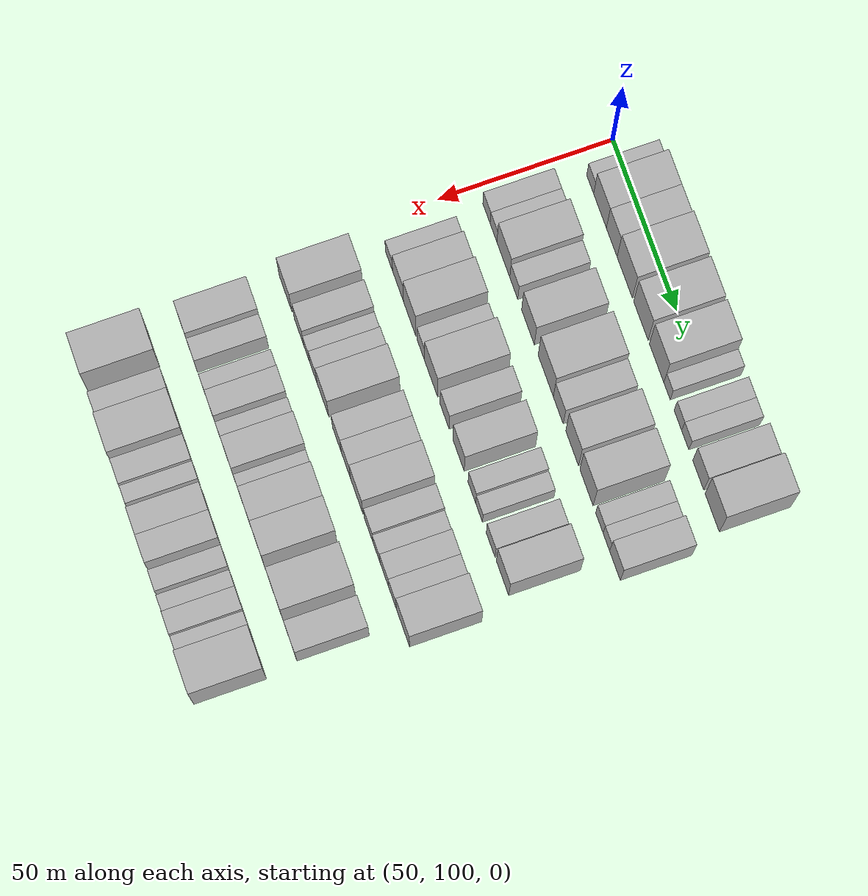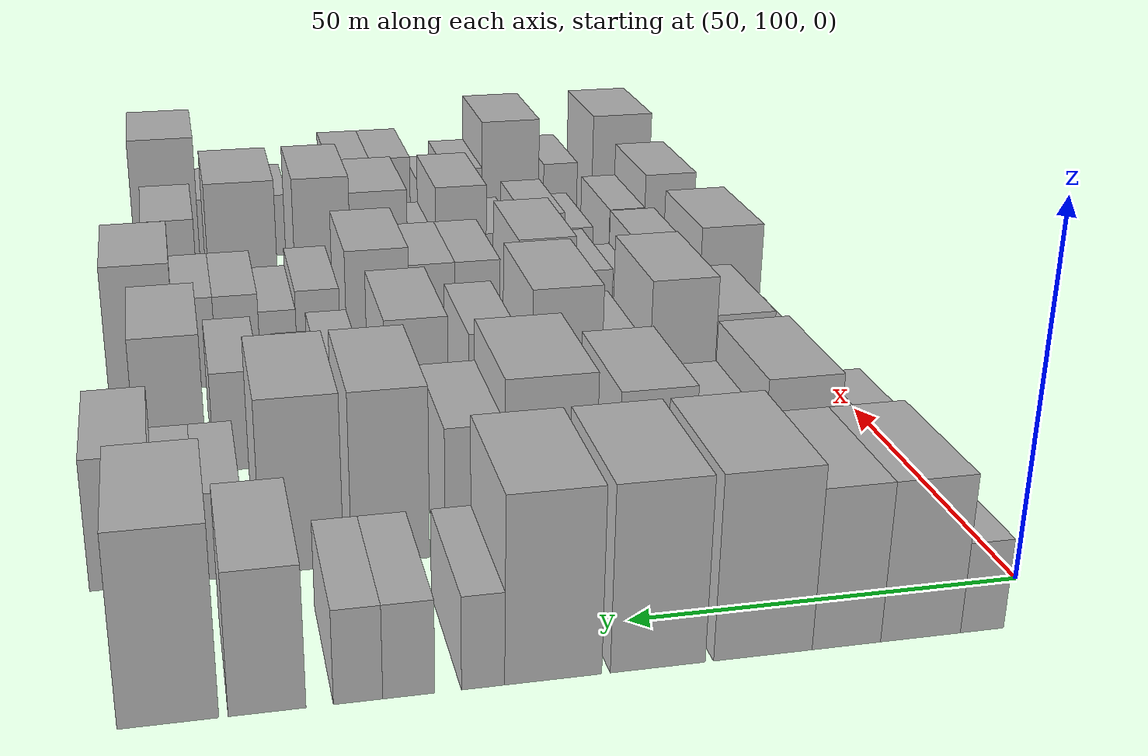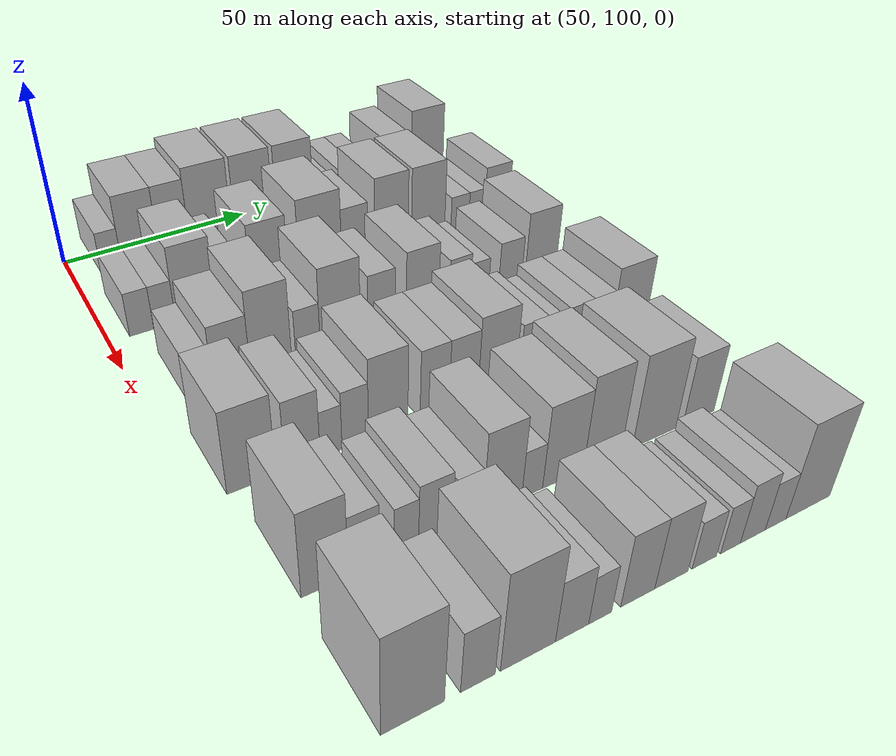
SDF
<sdf version="1.6">
 <world name="default">
  <model name="building_71">
   <static>1</static>
   <pose>50.0000 109.6231 0 0.000000 0.000000 0.000000</pose>
   <link name="link">
    <pose>0 0 6.00 0 0 0</pose>
    <collision name="collision"><geometry><box><size>20.0000 5.4961 12.0000</size></box></geometry></collision>
    <visual name="visual">
     <cast_shadows>0</cast_shadows>
     <geometry><box><size>20.0000 5.4961 12.0000</size></box></geometry>
     <material>
      <script>
       <uri>model://HANNAS_wall/materials/scripts</uri>
       <uri>model://HANNAS_wall/materials/textures</uri>
       <name>vrc/HANNAS_wall</name>
      </script>
     </material>
    </visual>
   </link>
  </model>
  <model name="building_72">
   <static>1</static>
   <pose>50.0000 117.3805 0 0.000000 0.000000 0.000000</pose>
   <link name="link">
    <pose>0 0 10.50 0 0 0</pose>
    <collision name="collision"><geometry><box><size>20.0000 10.0186 21.0000</size></box></geometry></collision>
    <visual name="visual">
     <cast_shadows>0</cast_shadows>
     <geometry><box><size>20.0000 10.0186 21.0000</size></box></geometry>
     <material>
      <script>
       <uri>model://HANNAS_wall/materials/scripts</uri>
       <uri>model://HANNAS_wall/materials/textures</uri>
       <name>vrc/HANNAS_wall</name>
      </script>
     </material>
    </visual>
   </link>
  </model>
  <model name="building_73">
   <static>1</static>
   <pose>50.0000 126.6168 0 0.000000 0.000000 0.000000</pose>
   <link name="link">
    <pose>0 0 10.50 0 0 0</pose>
    <collision name="collision"><geometry><box><size>20.0000 8.4540 21.0000</size></box></geometry></collision>
    <visual name="visual">
     <cast_shadows>0</cast_shadows>
     <geometry><box><size>20.0000 8.4540 21.0000</size></box></geometry>
     <material>
      <script>
       <uri>model://HANNAS_wall/materials/scripts</uri>
       <uri>model://HANNAS_wall/materials/textures</uri>
       <name>vrc/HANNAS_wall</name>
      </script>
     </material>
    </visual>
   </link>
  </model>
  <model name="building_74">
   <static>1</static>
   <pose>50.0000 136.8055 0 0.000000 0.000000 0.000000</pose>
   <link name="link">
    <pose>0 0 12.00 0 0 0</pose>
    <collision name="collision"><geometry><box><size>20.0000 11.9233 24.0000</size></box></geometry></collision>
    <visual name="visual">
     <cast_shadows>0</cast_shadows>
     <geometry><box><size>20.0000 11.9233 24.0000</size></box></geometry>
     <material>
      <script>
       <uri>model://HANNAS_wall/materials/scripts</uri>
       <uri>model://HANNAS_wall/materials/textures</uri>
       <name>vrc/HANNAS_wall</name>
      </script>
     </material>
    </visual>
   </link>
  </model>
  <model name="building_75">
   <static>1</static>
   <pose>50.0000 149.3845 0 0.000000 0.000000 0.000000</pose>
   <link name="link">
    <pose>0 0 12.00 0 0 0</pose>
    <collision name="collision"><geometry><box><size>20.0000 11.2349 24.0000</size></box></geometry></collision>
    <visual name="visual">
     <cast_shadows>0</cast_shadows>
     <geometry><box><size>20.0000 11.2349 24.0000</size></box></geometry>
     <material>
      <script>
       <uri>model://HANNAS_wall/materials/scripts</uri>
       <uri>model://HANNAS_wall/materials/textures</uri>
       <name>vrc/HANNAS_wall</name>
      </script>
     </material>
    </visual>
   </link>
  </model>
  <model name="building_76">
   <static>1</static>
   <pose>50.0000 161.6104 0 0.000000 0.000000 0.000000</pose>
   <link name="link">
    <pose>0 0 12.00 0 0 0</pose>
    <collision name="collision"><geometry><box><size>20.0000 11.2169 24.0000</size></box></geometry></collision>
    <visual name="visual">
     <cast_shadows>0</cast_shadows>
     <geometry><box><size>20.0000 11.2169 24.0000</size></box></geometry>
     <material>
      <script>
       <uri>model://HANNAS_wall/materials/scripts</uri>
       <uri>model://HANNAS_wall/materials/textures</uri>
       <name>vrc/HANNAS_wall</name>
      </script>
     </material>
    </visual>
   </link>
  </model>
  <model name="building_77">
   <static>1</static>
   <pose>50.0000 169.6769 0 0.000000 0.000000 0.000000</pose>
   <link name="link">
    <pose>0 0 6.00 0 0 0</pose>
    <collision name="collision"><geometry><box><size>20.0000 4.9160 12.0000</size></box></geometry></collision>
    <visual name="visual">
     <cast_shadows>0</cast_shadows>
     <geometry><box><size>20.0000 4.9160 12.0000</size></box></geometry>
     <material>
      <script>
       <uri>model://HANNAS_wall/materials/scripts</uri>
       <uri>model://HANNAS_wall/materials/textures</uri>
       <name>vrc/HANNAS_wall</name>
      </script>
     </material>
    </visual>
   </link>
  </model>
  <model name="building_78">
   <static>1</static>
   <pose>50.0000 178.0499 0 0.000000 0.000000 0.000000</pose>
   <link name="link">
    <pose>0 0 6.00 0 0 0</pose>
    <collision name="collision"><geometry><box><size>20.0000 5.8301 12.0000</size></box></geometry></collision>
    <visual name="visual">
     <cast_shadows>0</cast_shadows>
     <geometry><box><size>20.0000 5.8301 12.0000</size></box></geometry>
     <material>
      <script>
       <uri>model://HANNAS_wall/materials/scripts</uri>
       <uri>model://HANNAS_wall/materials/textures</uri>
       <name>vrc/HANNAS_wall</name>
      </script>
     </material>
    </visual>
   </link>
  </model>
  <model name="building_79">
   <static>1</static>
   <pose>50.0000 183.6998 0 0.000000 0.000000 0.000000</pose>
   <link name="link">
    <pose>0 0 6.00 0 0 0</pose>
    <collision name="collision"><geometry><box><size>20.0000 5.4696 12.0000</size></box></geometry></collision>
    <visual name="visual">
     <cast_shadows>0</cast_shadows>
     <geometry><box><size>20.0000 5.4696 12.0000</size></box></geometry>
     <material>
      <script>
       <uri>model://HANNAS_wall/materials/scripts</uri>
       <uri>model://HANNAS_wall/materials/textures</uri>
       <name>vrc/HANNAS_wall</name>
      </script>
     </material>
    </visual>
   </link>
  </model>
  <model name="building_80">
   <static>1</static>
   <pose>50.0000 193.6649 0 0.000000 0.000000 0.000000</pose>
   <link name="link">
    <pose>0 0 9.00 0 0 0</pose>
    <collision name="collision"><geometry><box><size>20.0000 8.4606 18.0000</size></box></geometry></collision>
    <visual name="visual">
     <cast_shadows>0</cast_shadows>
     <geometry><box><size>20.0000 8.4606 18.0000</size></box></geometry>
     <material>
      <script>
       <uri>model://HANNAS_wall/materials/scripts</uri>
       <uri>model://HANNAS_wall/materials/textures</uri>
       <name>vrc/HANNAS_wall</name>
      </script>
     </material>
    </visual>
   </link>
  </model>
  <model name="building_81">
   <static>1</static>
   <pose>50.0000 204.3203 0 0.000000 0.000000 0.000000</pose>
   <link name="link">
    <pose>0 0 12.00 0 0 0</pose>
    <collision name="collision"><geometry><box><size>20.0000 10.8502 24.0000</size></box></geometry></collision>
    <visual name="visual">
     <cast_shadows>0</cast_shadows>
     <geometry><box><size>20.0000 10.8502 24.0000</size></box></geometry>
     <material>
      <script>
       <uri>model://HANNAS_wall/materials/scripts</uri>
       <uri>model://HANNAS_wall/materials/textures</uri>
       <name>vrc/HANNAS_wall</name>
      </script>
     </material>
    </visual>
   </link>
  </model>
  <model name="building_188">
   <static>1</static>
   <pose>79.0000 107.9577 0 0.000000 0.000000 0.000000</pose>
   <link name="link">
    <pose>0 0 6.00 0 0 0</pose>
    <collision name="collision"><geometry><box><size>20.0000 5.8386 12.0000</size></box></geometry></collision>
    <visual name="visual">
     <cast_shadows>0</cast_shadows>
     <geometry><box><size>20.0000 5.8386 12.0000</size></box></geometry>
     <material>
      <script>
       <uri>model://HANNAS_wall/materials/scripts</uri>
       <uri>model://HANNAS_wall/materials/textures</uri>
       <name>vrc/HANNAS_wall</name>
      </script>
     </material>
    </visual>
   </link>
  </model>
  <model name="building_189">
   <static>1</static>
   <pose>79.0000 113.6249 0 0.000000 0.000000 0.000000</pose>
   <link name="link">
    <pose>0 0 6.00 0 0 0</pose>
    <collision name="collision"><geometry><box><size>20.0000 5.4958 12.0000</size></box></geometry></collision>
    <visual name="visual">
     <cast_shadows>0</cast_shadows>
     <geometry><box><size>20.0000 5.4958 12.0000</size></box></geometry>
     <material>
      <script>
       <uri>model://HANNAS_wall/materials/scripts</uri>
       <uri>model://HANNAS_wall/materials/textures</uri>
       <name>vrc/HANNAS_wall</name>
      </script>
     </material>
    </visual>
   </link>
  </model>
  <model name="building_190">
   <static>1</static>
   <pose>79.0000 121.5169 0 0.000000 0.000000 0.000000</pose>
   <link name="link">
    <pose>0 0 10.50 0 0 0</pose>
    <collision name="collision"><geometry><box><size>20.0000 10.2882 21.0000</size></box></geometry></collision>
    <visual name="visual">
     <cast_shadows>0</cast_shadows>
     <geometry><box><size>20.0000 10.2882 21.0000</size></box></geometry>
     <material>
      <script>
       <uri>model://HANNAS_wall/materials/scripts</uri>
       <uri>model://HANNAS_wall/materials/textures</uri>
       <name>vrc/HANNAS_wall</name>
      </script>
     </material>
    </visual>
   </link>
  </model>
  <model name="building_191">
   <static>1</static>
   <pose>79.0000 129.8417 0 0.000000 0.000000 0.000000</pose>
   <link name="link">
    <pose>0 0 7.50 0 0 0</pose>
    <collision name="collision"><geometry><box><size>20.0000 6.3615 15.0000</size></box></geometry></collision>
    <visual name="visual">
     <cast_shadows>0</cast_shadows>
     <geometry><box><size>20.0000 6.3615 15.0000</size></box></geometry>
     <material>
      <script>
       <uri>model://HANNAS_wall/materials/scripts</uri>
       <uri>model://HANNAS_wall/materials/textures</uri>
       <name>vrc/HANNAS_wall</name>
      </script>
     </material>
    </visual>
   </link>
  </model>
  <model name="building_192">
   <static>1</static>
   <pose>79.0000 141.0828 0 0.000000 0.000000 0.000000</pose>
   <link name="link">
    <pose>0 0 10.50 0 0 0</pose>
    <collision name="collision"><geometry><box><size>20.0000 10.1206 21.0000</size></box></geometry></collision>
    <visual name="visual">
     <cast_shadows>0</cast_shadows>
     <geometry><box><size>20.0000 10.1206 21.0000</size></box></geometry>
     <material>
      <script>
       <uri>model://HANNAS_wall/materials/scripts</uri>
       <uri>model://HANNAS_wall/materials/textures</uri>
       <name>vrc/HANNAS_wall</name>
      </script>
     </material>
    </visual>
   </link>
  </model>
  <model name="building_193">
   <static>1</static>
   <pose>79.0000 155.1201 0 0.000000 0.000000 0.000000</pose>
   <link name="link">
    <pose>0 0 12.00 0 0 0</pose>
    <collision name="collision"><geometry><box><size>20.0000 11.9540 24.0000</size></box></geometry></collision>
    <visual name="visual">
     <cast_shadows>0</cast_shadows>
     <geometry><box><size>20.0000 11.9540 24.0000</size></box></geometry>
     <material>
      <script>
       <uri>model://HANNAS_wall/materials/scripts</uri>
       <uri>model://HANNAS_wall/materials/textures</uri>
       <name>vrc/HANNAS_wall</name>
      </script>
     </material>
    </visual>
   </link>
  </model>
  <model name="building_194">
   <static>1</static>
   <pose>79.0000 164.9571 0 0.000000 0.000000 0.000000</pose>
   <link name="link">
    <pose>0 0 9.00 0 0 0</pose>
    <collision name="collision"><geometry><box><size>20.0000 7.7200 18.0000</size></box></geometry></collision>
    <visual name="visual">
     <cast_shadows>0</cast_shadows>
     <geometry><box><size>20.0000 7.7200 18.0000</size></box></geometry>
     <material>
      <script>
       <uri>model://HANNAS_wall/materials/scripts</uri>
       <uri>model://HANNAS_wall/materials/textures</uri>
       <name>vrc/HANNAS_wall</name>
      </script>
     </material>
    </visual>
   </link>
  </model>
  <model name="building_195">
   <static>1</static>
   <pose>79.0000 175.8119 0 0.000000 0.000000 0.000000</pose>
   <link name="link">
    <pose>0 0 12.00 0 0 0</pose>
    <collision name="collision"><geometry><box><size>20.0000 9.9896 24.0000</size></box></geometry></collision>
    <visual name="visual">
     <cast_shadows>0</cast_shadows>
     <geometry><box><size>20.0000 9.9896 24.0000</size></box></geometry>
     <material>
      <script>
       <uri>model://HANNAS_wall/materials/scripts</uri>
       <uri>model://HANNAS_wall/materials/textures</uri>
       <name>vrc/HANNAS_wall</name>
      </script>
     </material>
    </visual>
   </link>
  </model>
  <model name="building_196">
   <static>1</static>
   <pose>79.0000 186.9827 0 0.000000 0.000000 0.000000</pose>
   <link name="link">
    <pose>0 0 12.00 0 0 0</pose>
    <collision name="collision"><geometry><box><size>20.0000 10.3518 24.0000</size></box></geometry></collision>
    <visual name="visual">
     <cast_shadows>0</cast_shadows>
     <geometry><box><size>20.0000 10.3518 24.0000</size></box></geometry>
     <material>
      <script>
       <uri>model://HANNAS_wall/materials/scripts</uri>
       <uri>model://HANNAS_wall/materials/textures</uri>
       <name>vrc/HANNAS_wall</name>
      </script>
     </material>
    </visual>
   </link>
  </model>
  <model name="building_197">
   <static>1</static>
   <pose>79.0000 197.0429 0 0.000000 0.000000 0.000000</pose>
   <link name="link">
    <pose>0 0 6.00 0 0 0</pose>
    <collision name="collision"><geometry><box><size>20.0000 5.7686 12.0000</size></box></geometry></collision>
    <visual name="visual">
     <cast_shadows>0</cast_shadows>
     <geometry><box><size>20.0000 5.7686 12.0000</size></box></geometry>
     <material>
      <script>
       <uri>model://HANNAS_wall/materials/scripts</uri>
       <uri>model://HANNAS_wall/materials/textures</uri>
       <name>vrc/HANNAS_wall</name>
      </script>
     </material>
    </visual>
   </link>
  </model>
  <model name="building_198">
   <static>1</static>
   <pose>79.0000 202.4646 0 0.000000 0.000000 0.000000</pose>
   <link name="link">
    <pose>0 0 6.00 0 0 0</pose>
    <collision name="collision"><geometry><box><size>20.0000 5.0748 12.0000</size></box></geometry></collision>
    <visual name="visual">
     <cast_shadows>0</cast_shadows>
     <geometry><box><size>20.0000 5.0748 12.0000</size></box></geometry>
     <material>
      <script>
       <uri>model://HANNAS_wall/materials/scripts</uri>
       <uri>model://HANNAS_wall/materials/textures</uri>
       <name>vrc/HANNAS_wall</name>
      </script>
     </material>
    </visual>
   </link>
  </model>
  <model name="building_199">
   <static>1</static>
   <pose>79.0000 209.0979 0 0.000000 0.000000 0.000000</pose>
   <link name="link">
    <pose>0 0 9.00 0 0 0</pose>
    <collision name="collision"><geometry><box><size>20.0000 8.1917 18.0000</size></box></geometry></collision>
    <visual name="visual">
     <cast_shadows>0</cast_shadows>
     <geometry><box><size>20.0000 8.1917 18.0000</size></box></geometry>
     <material>
      <script>
       <uri>model://HANNAS_wall/materials/scripts</uri>
       <uri>model://HANNAS_wall/materials/textures</uri>
       <name>vrc/HANNAS_wall</name>
      </script>
     </material>
    </visual>
   </link>
  </model>
  <model name="building_303">
   <static>1</static>
   <pose>108.0000 111.7603 0 0.000000 0.000000 0.000000</pose>
   <link name="link">
    <pose>0 0 6.00 0 0 0</pose>
    <collision name="collision"><geometry><box><size>20.0000 5.7993 12.0000</size></box></geometry></collision>
    <visual name="visual">
     <cast_shadows>0</cast_shadows>
     <geometry><box><size>20.0000 5.7993 12.0000</size></box></geometry>
     <material>
      <script>
       <uri>model://HANNAS_wall/materials/scripts</uri>
       <uri>model://HANNAS_wall/materials/textures</uri>
       <name>vrc/HANNAS_wall</name>
      </script>
     </material>
    </visual>
   </link>
  </model>
  <model name="building_304">
   <static>1</static>
   <pose>108.0000 119.0857 0 0.000000 0.000000 0.000000</pose>
   <link name="link">
    <pose>0 0 9.00 0 0 0</pose>
    <collision name="collision"><geometry><box><size>20.0000 8.8515 18.0000</size></box></geometry></collision>
    <visual name="visual">
     <cast_shadows>0</cast_shadows>
     <geometry><box><size>20.0000 8.8515 18.0000</size></box></geometry>
     <material>
      <script>
       <uri>model://HANNAS_wall/materials/scripts</uri>
       <uri>model://HANNAS_wall/materials/textures</uri>
       <name>vrc/HANNAS_wall</name>
      </script>
     </material>
    </visual>
   </link>
  </model>
  <model name="building_305">
   <static>1</static>
   <pose>108.0000 128.4791 0 0.000000 0.000000 0.000000</pose>
   <link name="link">
    <pose>0 0 12.00 0 0 0</pose>
    <collision name="collision"><geometry><box><size>20.0000 9.9353 24.0000</size></box></geometry></collision>
    <visual name="visual">
     <cast_shadows>0</cast_shadows>
     <geometry><box><size>20.0000 9.9353 24.0000</size></box></geometry>
     <material>
      <script>
       <uri>model://HANNAS_wall/materials/scripts</uri>
       <uri>model://HANNAS_wall/materials/textures</uri>
       <name>vrc/HANNAS_wall</name>
      </script>
     </material>
    </visual>
   </link>
  </model>
  <model name="building_306">
   <static>1</static>
   <pose>108.0000 137.5349 0 0.000000 0.000000 0.000000</pose>
   <link name="link">
    <pose>0 0 7.50 0 0 0</pose>
    <collision name="collision"><geometry><box><size>20.0000 6.1764 15.0000</size></box></geometry></collision>
    <visual name="visual">
     <cast_shadows>0</cast_shadows>
     <geometry><box><size>20.0000 6.1764 15.0000</size></box></geometry>
     <material>
      <script>
       <uri>model://HANNAS_wall/materials/scripts</uri>
       <uri>model://HANNAS_wall/materials/textures</uri>
       <name>vrc/HANNAS_wall</name>
      </script>
     </material>
    </visual>
   </link>
  </model>
  <model name="building_307">
   <static>1</static>
   <pose>108.0000 145.7961 0 0.000000 0.000000 0.000000</pose>
   <link name="link">
    <pose>0 0 12.00 0 0 0</pose>
    <collision name="collision"><geometry><box><size>20.0000 10.3460 24.0000</size></box></geometry></collision>
    <visual name="visual">
     <cast_shadows>0</cast_shadows>
     <geometry><box><size>20.0000 10.3460 24.0000</size></box></geometry>
     <material>
      <script>
       <uri>model://HANNAS_wall/materials/scripts</uri>
       <uri>model://HANNAS_wall/materials/textures</uri>
       <name>vrc/HANNAS_wall</name>
      </script>
     </material>
    </visual>
   </link>
  </model>
  <model name="building_308">
   <static>1</static>
   <pose>108.0000 156.5765 0 0.000000 0.000000 0.000000</pose>
   <link name="link">
    <pose>0 0 9.00 0 0 0</pose>
    <collision name="collision"><geometry><box><size>20.0000 7.2147 18.0000</size></box></geometry></collision>
    <visual name="visual">
     <cast_shadows>0</cast_shadows>
     <geometry><box><size>20.0000 7.2147 18.0000</size></box></geometry>
     <material>
      <script>
       <uri>model://HANNAS_wall/materials/scripts</uri>
       <uri>model://HANNAS_wall/materials/textures</uri>
       <name>vrc/HANNAS_wall</name>
      </script>
     </material>
    </visual>
   </link>
  </model>
  <model name="building_309">
   <static>1</static>
   <pose>108.0000 167.6947 0 0.000000 0.000000 0.000000</pose>
   <link name="link">
    <pose>0 0 10.50 0 0 0</pose>
    <collision name="collision"><geometry><box><size>20.0000 9.0217 21.0000</size></box></geometry></collision>
    <visual name="visual">
     <cast_shadows>0</cast_shadows>
     <geometry><box><size>20.0000 9.0217 21.0000</size></box></geometry>
     <material>
      <script>
       <uri>model://HANNAS_wall/materials/scripts</uri>
       <uri>model://HANNAS_wall/materials/textures</uri>
       <name>vrc/HANNAS_wall</name>
      </script>
     </material>
    </visual>
   </link>
  </model>
  <model name="building_310">
   <static>1</static>
   <pose>108.0000 178.2687 0 0.000000 0.000000 0.000000</pose>
   <link name="link">
    <pose>0 0 7.50 0 0 0</pose>
    <collision name="collision"><geometry><box><size>20.0000 6.1264 15.0000</size></box></geometry></collision>
    <visual name="visual">
     <cast_shadows>0</cast_shadows>
     <geometry><box><size>20.0000 6.1264 15.0000</size></box></geometry>
     <material>
      <script>
       <uri>model://HANNAS_wall/materials/scripts</uri>
       <uri>model://HANNAS_wall/materials/textures</uri>
       <name>vrc/HANNAS_wall</name>
      </script>
     </material>
    </visual>
   </link>
  </model>
  <model name="building_311">
   <static>1</static>
   <pose>108.0000 183.9919 0 0.000000 0.000000 0.000000</pose>
   <link name="link">
    <pose>0 0 6.00 0 0 0</pose>
    <collision name="collision"><geometry><box><size>20.0000 5.3199 12.0000</size></box></geometry></collision>
    <visual name="visual">
     <cast_shadows>0</cast_shadows>
     <geometry><box><size>20.0000 5.3199 12.0000</size></box></geometry>
     <material>
      <script>
       <uri>model://HANNAS_wall/materials/scripts</uri>
       <uri>model://HANNAS_wall/materials/textures</uri>
       <name>vrc/HANNAS_wall</name>
      </script>
     </material>
    </visual>
   </link>
  </model>
  <model name="building_312">
   <static>1</static>
   <pose>108.0000 193.1309 0 0.000000 0.000000 0.000000</pose>
   <link name="link">
    <pose>0 0 7.50 0 0 0</pose>
    <collision name="collision"><geometry><box><size>20.0000 6.9581 15.0000</size></box></geometry></collision>
    <visual name="visual">
     <cast_shadows>0</cast_shadows>
     <geometry><box><size>20.0000 6.9581 15.0000</size></box></geometry>
     <material>
      <script>
       <uri>model://HANNAS_wall/materials/scripts</uri>
       <uri>model://HANNAS_wall/materials/textures</uri>
       <name>vrc/HANNAS_wall</name>
      </script>
     </material>
    </visual>
   </link>
  </model>
  <model name="building_313">
   <static>1</static>
   <pose>108.0000 202.4388 0 0.000000 0.000000 0.000000</pose>
   <link name="link">
    <pose>0 0 10.50 0 0 0</pose>
    <collision name="collision"><geometry><box><size>20.0000 9.6577 21.0000</size></box></geometry></collision>
    <visual name="visual">
     <cast_shadows>0</cast_shadows>
     <geometry><box><size>20.0000 9.6577 21.0000</size></box></geometry>
     <material>
      <script>
       <uri>model://HANNAS_wall/materials/scripts</uri>
       <uri>model://HANNAS_wall/materials/textures</uri>
       <name>vrc/HANNAS_wall</name>
      </script>
     </material>
    </visual>
   </link>
  </model>
  <model name="building_418">
   <static>1</static>
   <pose>137.0000 111.1662 0 0.000000 0.000000 0.000000</pose>
   <link name="link">
    <pose>0 0 10.50 0 0 0</pose>
    <collision name="collision"><geometry><box><size>20.0000 10.3958 21.0000</size></box></geometry></collision>
    <visual name="visual">
     <cast_shadows>0</cast_shadows>
     <geometry><box><size>20.0000 10.3958 21.0000</size></box></geometry>
     <material>
      <script>
       <uri>model://HANNAS_wall/materials/scripts</uri>
       <uri>model://HANNAS_wall/materials/textures</uri>
       <name>vrc/HANNAS_wall</name>
      </script>
     </material>
    </visual>
   </link>
  </model>
  <model name="building_419">
   <static>1</static>
   <pose>137.0000 122.2342 0 0.000000 0.000000 0.000000</pose>
   <link name="link">
    <pose>0 0 9.00 0 0 0</pose>
    <collision name="collision"><geometry><box><size>20.0000 7.7404 18.0000</size></box></geometry></collision>
    <visual name="visual">
     <cast_shadows>0</cast_shadows>
     <geometry><box><size>20.0000 7.7404 18.0000</size></box></geometry>
     <material>
      <script>
       <uri>model://HANNAS_wall/materials/scripts</uri>
       <uri>model://HANNAS_wall/materials/textures</uri>
       <name>vrc/HANNAS_wall</name>
      </script>
     </material>
    </visual>
   </link>
  </model>
  <model name="building_420">
   <static>1</static>
   <pose>137.0000 128.5787 0 0.000000 0.000000 0.000000</pose>
   <link name="link">
    <pose>0 0 6.00 0 0 0</pose>
    <collision name="collision"><geometry><box><size>20.0000 4.9485 12.0000</size></box></geometry></collision>
    <visual name="visual">
     <cast_shadows>0</cast_shadows>
     <geometry><box><size>20.0000 4.9485 12.0000</size></box></geometry>
     <material>
      <script>
       <uri>model://HANNAS_wall/materials/scripts</uri>
       <uri>model://HANNAS_wall/materials/textures</uri>
       <name>vrc/HANNAS_wall</name>
      </script>
     </material>
    </visual>
   </link>
  </model>
  <model name="building_421">
   <static>1</static>
   <pose>137.0000 134.1268 0 0.000000 0.000000 0.000000</pose>
   <link name="link">
    <pose>0 0 7.50 0 0 0</pose>
    <collision name="collision"><geometry><box><size>20.0000 6.1476 15.0000</size></box></geometry></collision>
    <visual name="visual">
     <cast_shadows>0</cast_shadows>
     <geometry><box><size>20.0000 6.1476 15.0000</size></box></geometry>
     <material>
      <script>
       <uri>model://HANNAS_wall/materials/scripts</uri>
       <uri>model://HANNAS_wall/materials/textures</uri>
       <name>vrc/HANNAS_wall</name>
      </script>
     </material>
    </visual>
   </link>
  </model>
  <model name="building_422">
   <static>1</static>
   <pose>137.0000 141.8882 0 0.000000 0.000000 0.000000</pose>
   <link name="link">
    <pose>0 0 10.50 0 0 0</pose>
    <collision name="collision"><geometry><box><size>20.0000 9.3752 21.0000</size></box></geometry></collision>
    <visual name="visual">
     <cast_shadows>0</cast_shadows>
     <geometry><box><size>20.0000 9.3752 21.0000</size></box></geometry>
     <material>
      <script>
       <uri>model://HANNAS_wall/materials/scripts</uri>
       <uri>model://HANNAS_wall/materials/textures</uri>
       <name>vrc/HANNAS_wall</name>
      </script>
     </material>
    </visual>
   </link>
  </model>
  <model name="building_423">
   <static>1</static>
   <pose>137.0000 153.1943 0 0.000000 0.000000 0.000000</pose>
   <link name="link">
    <pose>0 0 9.00 0 0 0</pose>
    <collision name="collision"><geometry><box><size>20.0000 7.2371 18.0000</size></box></geometry></collision>
    <visual name="visual">
     <cast_shadows>0</cast_shadows>
     <geometry><box><size>20.0000 7.2371 18.0000</size></box></geometry>
     <material>
      <script>
       <uri>model://HANNAS_wall/materials/scripts</uri>
       <uri>model://HANNAS_wall/materials/textures</uri>
       <name>vrc/HANNAS_wall</name>
      </script>
     </material>
    </visual>
   </link>
  </model>
  <model name="building_424">
   <static>1</static>
   <pose>137.0000 160.5225 0 0.000000 0.000000 0.000000</pose>
   <link name="link">
    <pose>0 0 9.00 0 0 0</pose>
    <collision name="collision"><geometry><box><size>20.0000 7.4191 18.0000</size></box></geometry></collision>
    <visual name="visual">
     <cast_shadows>0</cast_shadows>
     <geometry><box><size>20.0000 7.4191 18.0000</size></box></geometry>
     <material>
      <script>
       <uri>model://HANNAS_wall/materials/scripts</uri>
       <uri>model://HANNAS_wall/materials/textures</uri>
       <name>vrc/HANNAS_wall</name>
      </script>
     </material>
    </visual>
   </link>
  </model>
  <model name="building_425">
   <static>1</static>
   <pose>137.0000 169.2328 0 0.000000 0.000000 0.000000</pose>
   <link name="link">
    <pose>0 0 10.50 0 0 0</pose>
    <collision name="collision"><geometry><box><size>20.0000 10.0016 21.0000</size></box></geometry></collision>
    <visual name="visual">
     <cast_shadows>0</cast_shadows>
     <geometry><box><size>20.0000 10.0016 21.0000</size></box></geometry>
     <material>
      <script>
       <uri>model://HANNAS_wall/materials/scripts</uri>
       <uri>model://HANNAS_wall/materials/textures</uri>
       <name>vrc/HANNAS_wall</name>
      </script>
     </material>
    </visual>
   </link>
  </model>
  <model name="building_426">
   <static>1</static>
   <pose>137.0000 178.6689 0 0.000000 0.000000 0.000000</pose>
   <link name="link">
    <pose>0 0 7.50 0 0 0</pose>
    <collision name="collision"><geometry><box><size>20.0000 6.8707 15.0000</size></box></geometry></collision>
    <visual name="visual">
     <cast_shadows>0</cast_shadows>
     <geometry><box><size>20.0000 6.8707 15.0000</size></box></geometry>
     <material>
      <script>
       <uri>model://HANNAS_wall/materials/scripts</uri>
       <uri>model://HANNAS_wall/materials/textures</uri>
       <name>vrc/HANNAS_wall</name>
      </script>
     </material>
    </visual>
   </link>
  </model>
  <model name="building_427">
   <static>1</static>
   <pose>137.0000 185.0002 0 0.000000 0.000000 0.000000</pose>
   <link name="link">
    <pose>0 0 6.00 0 0 0</pose>
    <collision name="collision"><geometry><box><size>20.0000 5.7919 12.0000</size></box></geometry></collision>
    <visual name="visual">
     <cast_shadows>0</cast_shadows>
     <geometry><box><size>20.0000 5.7919 12.0000</size></box></geometry>
     <material>
      <script>
       <uri>model://HANNAS_wall/materials/scripts</uri>
       <uri>model://HANNAS_wall/materials/textures</uri>
       <name>vrc/HANNAS_wall</name>
      </script>
     </material>
    </visual>
   </link>
  </model>
  <model name="building_428">
   <static>1</static>
   <pose>137.0000 191.3421 0 0.000000 0.000000 0.000000</pose>
   <link name="link">
    <pose>0 0 7.50 0 0 0</pose>
    <collision name="collision"><geometry><box><size>20.0000 6.8920 15.0000</size></box></geometry></collision>
    <visual name="visual">
     <cast_shadows>0</cast_shadows>
     <geometry><box><size>20.0000 6.8920 15.0000</size></box></geometry>
     <material>
      <script>
       <uri>model://HANNAS_wall/materials/scripts</uri>
       <uri>model://HANNAS_wall/materials/textures</uri>
       <name>vrc/HANNAS_wall</name>
      </script>
     </material>
    </visual>
   </link>
  </model>
  <model name="building_429">
   <static>1</static>
   <pose>137.0000 197.8875 0 0.000000 0.000000 0.000000</pose>
   <link name="link">
    <pose>0 0 7.50 0 0 0</pose>
    <collision name="collision"><geometry><box><size>20.0000 6.1988 15.0000</size></box></geometry></collision>
    <visual name="visual">
     <cast_shadows>0</cast_shadows>
     <geometry><box><size>20.0000 6.1988 15.0000</size></box></geometry>
     <material>
      <script>
       <uri>model://HANNAS_wall/materials/scripts</uri>
       <uri>model://HANNAS_wall/materials/textures</uri>
       <name>vrc/HANNAS_wall</name>
      </script>
     </material>
    </visual>
   </link>
  </model>
  <model name="building_430">
   <static>1</static>
   <pose>137.0000 206.2134 0 0.000000 0.000000 0.000000</pose>
   <link name="link">
    <pose>0 0 10.50 0 0 0</pose>
    <collision name="collision"><geometry><box><size>20.0000 10.4529 21.0000</size></box></geometry></collision>
    <visual name="visual">
     <cast_shadows>0</cast_shadows>
     <geometry><box><size>20.0000 10.4529 21.0000</size></box></geometry>
     <material>
      <script>
       <uri>model://HANNAS_wall/materials/scripts</uri>
       <uri>model://HANNAS_wall/materials/textures</uri>
       <name>vrc/HANNAS_wall</name>
      </script>
     </material>
    </visual>
   </link>
  </model>
  <model name="building_540">
   <static>1</static>
   <pose>166.0000 112.5970 0 0.000000 0.000000 0.000000</pose>
   <link name="link">
    <pose>0 0 10.50 0 0 0</pose>
    <collision name="collision"><geometry><box><size>20.0000 9.2209 21.0000</size></box></geometry></collision>
    <visual name="visual">
     <cast_shadows>0</cast_shadows>
     <geometry><box><size>20.0000 9.2209 21.0000</size></box></geometry>
     <material>
      <script>
       <uri>model://HANNAS_wall/materials/scripts</uri>
       <uri>model://HANNAS_wall/materials/textures</uri>
       <name>vrc/HANNAS_wall</name>
      </script>
     </material>
    </visual>
   </link>
  </model>
  <model name="building_541">
   <static>1</static>
   <pose>166.0000 120.4123 0 0.000000 0.000000 0.000000</pose>
   <link name="link">
    <pose>0 0 7.50 0 0 0</pose>
    <collision name="collision"><geometry><box><size>20.0000 6.4096 15.0000</size></box></geometry></collision>
    <visual name="visual">
     <cast_shadows>0</cast_shadows>
     <geometry><box><size>20.0000 6.4096 15.0000</size></box></geometry>
     <material>
      <script>
       <uri>model://HANNAS_wall/materials/scripts</uri>
       <uri>model://HANNAS_wall/materials/textures</uri>
       <name>vrc/HANNAS_wall</name>
      </script>
     </material>
    </visual>
   </link>
  </model>
  <model name="building_542">
   <static>1</static>
   <pose>166.0000 129.2062 0 0.000000 0.000000 0.000000</pose>
   <link name="link">
    <pose>0 0 6.00 0 0 0</pose>
    <collision name="collision"><geometry><box><size>20.0000 5.1783 12.0000</size></box></geometry></collision>
    <visual name="visual">
     <cast_shadows>0</cast_shadows>
     <geometry><box><size>20.0000 5.1783 12.0000</size></box></geometry>
     <material>
      <script>
       <uri>model://HANNAS_wall/materials/scripts</uri>
       <uri>model://HANNAS_wall/materials/textures</uri>
       <name>vrc/HANNAS_wall</name>
      </script>
     </material>
    </visual>
   </link>
  </model>
  <model name="building_543">
   <static>1</static>
   <pose>166.0000 135.4768 0 0.000000 0.000000 0.000000</pose>
   <link name="link">
    <pose>0 0 7.50 0 0 0</pose>
    <collision name="collision"><geometry><box><size>20.0000 7.3629 15.0000</size></box></geometry></collision>
    <visual name="visual">
     <cast_shadows>0</cast_shadows>
     <geometry><box><size>20.0000 7.3629 15.0000</size></box></geometry>
     <material>
      <script>
       <uri>model://HANNAS_wall/materials/scripts</uri>
       <uri>model://HANNAS_wall/materials/textures</uri>
       <name>vrc/HANNAS_wall</name>
      </script>
     </material>
    </visual>
   </link>
  </model>
  <model name="building_544">
   <static>1</static>
   <pose>166.0000 143.0606 0 0.000000 0.000000 0.000000</pose>
   <link name="link">
    <pose>0 0 6.00 0 0 0</pose>
    <collision name="collision"><geometry><box><size>20.0000 5.8047 12.0000</size></box></geometry></collision>
    <visual name="visual">
     <cast_shadows>0</cast_shadows>
     <geometry><box><size>20.0000 5.8047 12.0000</size></box></geometry>
     <material>
      <script>
       <uri>model://HANNAS_wall/materials/scripts</uri>
       <uri>model://HANNAS_wall/materials/textures</uri>
       <name>vrc/HANNAS_wall</name>
      </script>
     </material>
    </visual>
   </link>
  </model>
  <model name="building_545">
   <static>1</static>
   <pose>166.0000 150.4653 0 0.000000 0.000000 0.000000</pose>
   <link name="link">
    <pose>0 0 10.50 0 0 0</pose>
    <collision name="collision"><geometry><box><size>20.0000 9.0047 21.0000</size></box></geometry></collision>
    <visual name="visual">
     <cast_shadows>0</cast_shadows>
     <geometry><box><size>20.0000 9.0047 21.0000</size></box></geometry>
     <material>
      <script>
       <uri>model://HANNAS_wall/materials/scripts</uri>
       <uri>model://HANNAS_wall/materials/textures</uri>
       <name>vrc/HANNAS_wall</name>
      </script>
     </material>
    </visual>
   </link>
  </model>
  <model name="building_546">
   <static>1</static>
   <pose>166.0000 157.4641 0 0.000000 0.000000 0.000000</pose>
   <link name="link">
    <pose>0 0 6.00 0 0 0</pose>
    <collision name="collision"><geometry><box><size>20.0000 4.9929 12.0000</size></box></geometry></collision>
    <visual name="visual">
     <cast_shadows>0</cast_shadows>
     <geometry><box><size>20.0000 4.9929 12.0000</size></box></geometry>
     <material>
      <script>
       <uri>model://HANNAS_wall/materials/scripts</uri>
       <uri>model://HANNAS_wall/materials/textures</uri>
       <name>vrc/HANNAS_wall</name>
      </script>
     </material>
    </visual>
   </link>
  </model>
  <model name="building_547">
   <static>1</static>
   <pose>166.0000 164.9732 0 0.000000 0.000000 0.000000</pose>
   <link name="link">
    <pose>0 0 10.50 0 0 0</pose>
    <collision name="collision"><geometry><box><size>20.0000 10.0254 21.0000</size></box></geometry></collision>
    <visual name="visual">
     <cast_shadows>0</cast_shadows>
     <geometry><box><size>20.0000 10.0254 21.0000</size></box></geometry>
     <material>
      <script>
       <uri>model://HANNAS_wall/materials/scripts</uri>
       <uri>model://HANNAS_wall/materials/textures</uri>
       <name>vrc/HANNAS_wall</name>
      </script>
     </material>
    </visual>
   </link>
  </model>
  <model name="building_548">
   <static>1</static>
   <pose>166.0000 174.8303 0 0.000000 0.000000 0.000000</pose>
   <link name="link">
    <pose>0 0 12.00 0 0 0</pose>
    <collision name="collision"><geometry><box><size>20.0000 9.6888 24.0000</size></box></geometry></collision>
    <visual name="visual">
     <cast_shadows>0</cast_shadows>
     <geometry><box><size>20.0000 9.6888 24.0000</size></box></geometry>
     <material>
      <script>
       <uri>model://HANNAS_wall/materials/scripts</uri>
       <uri>model://HANNAS_wall/materials/textures</uri>
       <name>vrc/HANNAS_wall</name>
      </script>
     </material>
    </visual>
   </link>
  </model>
  <model name="building_549">
   <static>1</static>
   <pose>166.0000 188.5589 0 0.000000 0.000000 0.000000</pose>
   <link name="link">
    <pose>0 0 12.00 0 0 0</pose>
    <collision name="collision"><geometry><box><size>20.0000 11.7683 24.0000</size></box></geometry></collision>
    <visual name="visual">
     <cast_shadows>0</cast_shadows>
     <geometry><box><size>20.0000 11.7683 24.0000</size></box></geometry>
     <material>
      <script>
       <uri>model://HANNAS_wall/materials/scripts</uri>
       <uri>model://HANNAS_wall/materials/textures</uri>
       <name>vrc/HANNAS_wall</name>
      </script>
     </material>
    </visual>
   </link>
  </model>
  <model name="building_550">
   <static>1</static>
   <pose>166.0000 200.8304 0 0.000000 0.000000 0.000000</pose>
   <link name="link">
    <pose>0 0 9.00 0 0 0</pose>
    <collision name="collision"><geometry><box><size>20.0000 8.7747 18.0000</size></box></geometry></collision>
    <visual name="visual">
     <cast_shadows>0</cast_shadows>
     <geometry><box><size>20.0000 8.7747 18.0000</size></box></geometry>
     <material>
      <script>
       <uri>model://HANNAS_wall/materials/scripts</uri>
       <uri>model://HANNAS_wall/materials/textures</uri>
       <name>vrc/HANNAS_wall</name>
      </script>
     </material>
    </visual>
   </link>
  </model>
  <model name="building_653">
   <static>1</static>
   <pose>195.0000 113.3562 0 0.000000 0.000000 0.000000</pose>
   <link name="link">
    <pose>0 0 12.00 0 0 0</pose>
    <collision name="collision"><geometry><box><size>20.0000 11.5565 24.0000</size></box></geometry></collision>
    <visual name="visual">
     <cast_shadows>0</cast_shadows>
     <geometry><box><size>20.0000 11.5565 24.0000</size></box></geometry>
     <material>
      <script>
       <uri>model://HANNAS_wall/materials/scripts</uri>
       <uri>model://HANNAS_wall/materials/textures</uri>
       <name>vrc/HANNAS_wall</name>
      </script>
     </material>
    </visual>
   </link>
  </model>
  <model name="building_654">
   <static>1</static>
   <pose>195.0000 125.4670 0 0.000000 0.000000 0.000000</pose>
   <link name="link">
    <pose>0 0 7.50 0 0 0</pose>
    <collision name="collision"><geometry><box><size>20.0000 6.6651 15.0000</size></box></geometry></collision>
    <visual name="visual">
     <cast_shadows>0</cast_shadows>
     <geometry><box><size>20.0000 6.6651 15.0000</size></box></geometry>
     <material>
      <script>
       <uri>model://HANNAS_wall/materials/scripts</uri>
       <uri>model://HANNAS_wall/materials/textures</uri>
       <name>vrc/HANNAS_wall</name>
      </script>
     </material>
    </visual>
   </link>
  </model>
  <model name="building_655">
   <static>1</static>
   <pose>195.0000 135.3631 0 0.000000 0.000000 0.000000</pose>
   <link name="link">
    <pose>0 0 12.00 0 0 0</pose>
    <collision name="collision"><geometry><box><size>20.0000 11.1273 24.0000</size></box></geometry></collision>
    <visual name="visual">
     <cast_shadows>0</cast_shadows>
     <geometry><box><size>20.0000 11.1273 24.0000</size></box></geometry>
     <material>
      <script>
       <uri>model://HANNAS_wall/materials/scripts</uri>
       <uri>model://HANNAS_wall/materials/textures</uri>
       <name>vrc/HANNAS_wall</name>
      </script>
     </material>
    </visual>
   </link>
  </model>
  <model name="building_656">
   <static>1</static>
   <pose>195.0000 144.4387 0 0.000000 0.000000 0.000000</pose>
   <link name="link">
    <pose>0 0 7.50 0 0 0</pose>
    <collision name="collision"><geometry><box><size>20.0000 7.0239 15.0000</size></box></geometry></collision>
    <visual name="visual">
     <cast_shadows>0</cast_shadows>
     <geometry><box><size>20.0000 7.0239 15.0000</size></box></geometry>
     <material>
      <script>
       <uri>model://HANNAS_wall/materials/scripts</uri>
       <uri>model://HANNAS_wall/materials/textures</uri>
       <name>vrc/HANNAS_wall</name>
      </script>
     </material>
    </visual>
   </link>
  </model>
  <model name="building_657">
   <static>1</static>
   <pose>195.0000 150.4364 0 0.000000 0.000000 0.000000</pose>
   <link name="link">
    <pose>0 0 6.00 0 0 0</pose>
    <collision name="collision"><geometry><box><size>20.0000 4.9715 12.0000</size></box></geometry></collision>
    <visual name="visual">
     <cast_shadows>0</cast_shadows>
     <geometry><box><size>20.0000 4.9715 12.0000</size></box></geometry>
     <material>
      <script>
       <uri>model://HANNAS_wall/materials/scripts</uri>
       <uri>model://HANNAS_wall/materials/textures</uri>
       <name>vrc/HANNAS_wall</name>
      </script>
     </material>
    </visual>
   </link>
  </model>
  <model name="building_658">
   <static>1</static>
   <pose>195.0000 158.7759 0 0.000000 0.000000 0.000000</pose>
   <link name="link">
    <pose>0 0 9.00 0 0 0</pose>
    <collision name="collision"><geometry><box><size>20.0000 7.7074 18.0000</size></box></geometry></collision>
    <visual name="visual">
     <cast_shadows>0</cast_shadows>
     <geometry><box><size>20.0000 7.7074 18.0000</size></box></geometry>
     <material>
      <script>
       <uri>model://HANNAS_wall/materials/scripts</uri>
       <uri>model://HANNAS_wall/materials/textures</uri>
       <name>vrc/HANNAS_wall</name>
      </script>
     </material>
    </visual>
   </link>
  </model>
  <model name="building_659">
   <static>1</static>
   <pose>195.0000 166.5199 0 0.000000 0.000000 0.000000</pose>
   <link name="link">
    <pose>0 0 9.00 0 0 0</pose>
    <collision name="collision"><geometry><box><size>20.0000 7.7806 18.0000</size></box></geometry></collision>
    <visual name="visual">
     <cast_shadows>0</cast_shadows>
     <geometry><box><size>20.0000 7.7806 18.0000</size></box></geometry>
     <material>
      <script>
       <uri>model://HANNAS_wall/materials/scripts</uri>
       <uri>model://HANNAS_wall/materials/textures</uri>
       <name>vrc/HANNAS_wall</name>
      </script>
     </material>
    </visual>
   </link>
  </model>
  <model name="building_660">
   <static>1</static>
   <pose>195.0000 174.3665 0 0.000000 0.000000 0.000000</pose>
   <link name="link">
    <pose>0 0 6.00 0 0 0</pose>
    <collision name="collision"><geometry><box><size>20.0000 5.9126 12.0000</size></box></geometry></collision>
    <visual name="visual">
     <cast_shadows>0</cast_shadows>
     <geometry><box><size>20.0000 5.9126 12.0000</size></box></geometry>
     <material>
      <script>
       <uri>model://HANNAS_wall/materials/scripts</uri>
       <uri>model://HANNAS_wall/materials/textures</uri>
       <name>vrc/HANNAS_wall</name>
      </script>
     </material>
    </visual>
   </link>
  </model>
  <model name="building_661">
   <static>1</static>
   <pose>195.0000 180.8032 0 0.000000 0.000000 0.000000</pose>
   <link name="link">
    <pose>0 0 6.00 0 0 0</pose>
    <collision name="collision"><geometry><box><size>20.0000 4.9607 12.0000</size></box></geometry></collision>
    <visual name="visual">
     <cast_shadows>0</cast_shadows>
     <geometry><box><size>20.0000 4.9607 12.0000</size></box></geometry>
     <material>
      <script>
       <uri>model://HANNAS_wall/materials/scripts</uri>
       <uri>model://HANNAS_wall/materials/textures</uri>
       <name>vrc/HANNAS_wall</name>
      </script>
     </material>
    </visual>
   </link>
  </model>
  <model name="building_662">
   <static>1</static>
   <pose>195.0000 186.4794 0 0.000000 0.000000 0.000000</pose>
   <link name="link">
    <pose>0 0 7.50 0 0 0</pose>
    <collision name="collision"><geometry><box><size>20.0000 6.3917 15.0000</size></box></geometry></collision>
    <visual name="visual">
     <cast_shadows>0</cast_shadows>
     <geometry><box><size>20.0000 6.3917 15.0000</size></box></geometry>
     <material>
      <script>
       <uri>model://HANNAS_wall/materials/scripts</uri>
       <uri>model://HANNAS_wall/materials/textures</uri>
       <name>vrc/HANNAS_wall</name>
      </script>
     </material>
    </visual>
   </link>
  </model>
  <model name="building_663">
   <static>1</static>
   <pose>195.0000 192.4105 0 0.000000 0.000000 0.000000</pose>
   <link name="link">
    <pose>0 0 6.00 0 0 0</pose>
    <collision name="collision"><geometry><box><size>20.0000 5.4705 12.0000</size></box></geometry></collision>
    <visual name="visual">
     <cast_shadows>0</cast_shadows>
     <geometry><box><size>20.0000 5.4705 12.0000</size></box></geometry>
     <material>
      <script>
       <uri>model://HANNAS_wall/materials/scripts</uri>
       <uri>model://HANNAS_wall/materials/textures</uri>
       <name>vrc/HANNAS_wall</name>
      </script>
     </material>
    </visual>
   </link>
  </model>
  <model name="building_664">
   <static>1</static>
   <pose>195.0000 201.0972 0 0.000000 0.000000 0.000000</pose>
   <link name="link">
    <pose>0 0 12.00 0 0 0</pose>
    <collision name="collision"><geometry><box><size>20.0000 11.9028 24.0000</size></box></geometry></collision>
    <visual name="visual">
     <cast_shadows>0</cast_shadows>
     <geometry><box><size>20.0000 11.9028 24.0000</size></box></geometry>
     <material>
      <script>
       <uri>model://HANNAS_wall/materials/scripts</uri>
       <uri>model://HANNAS_wall/materials/textures</uri>
       <name>vrc/HANNAS_wall</name>
      </script>
     </material>
    </visual>
   </link>
  </model>
 </world>
</sdf>
